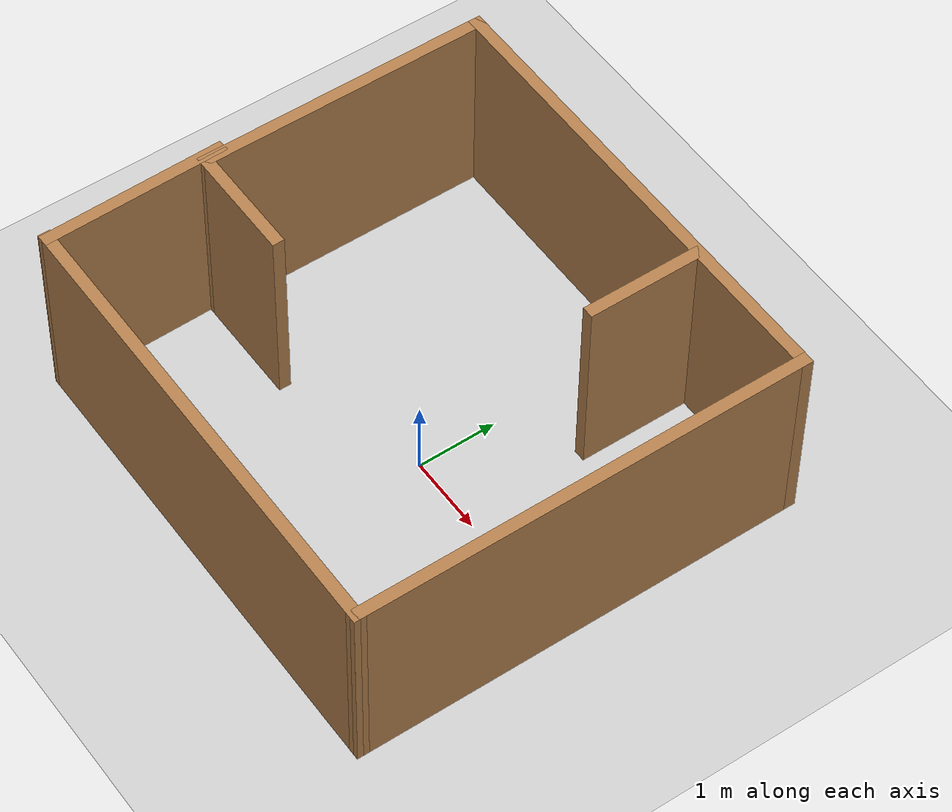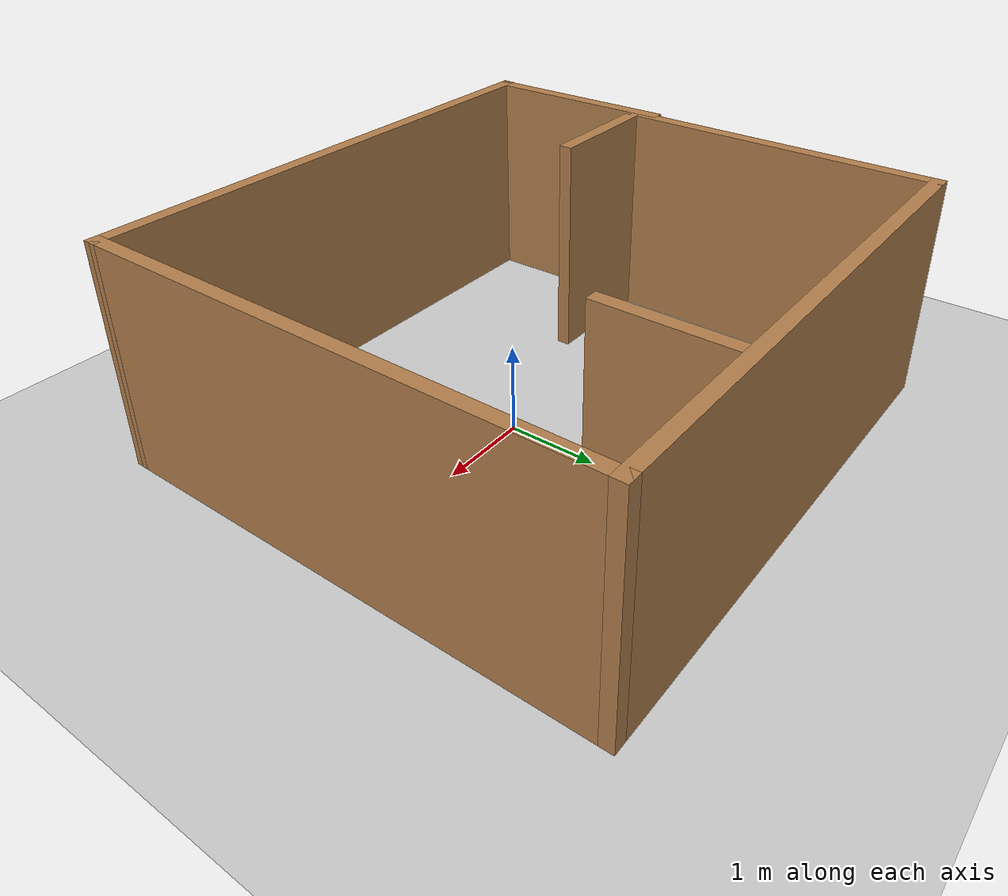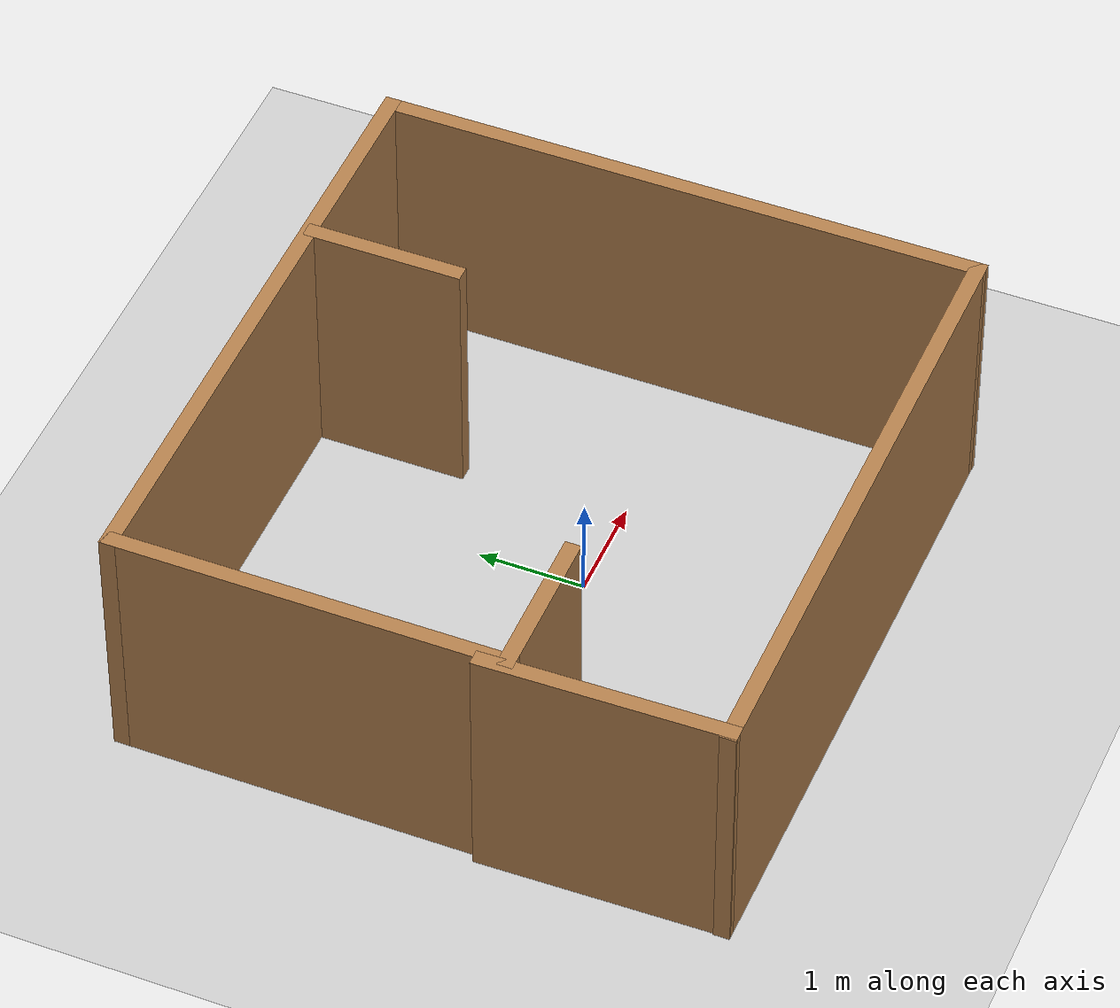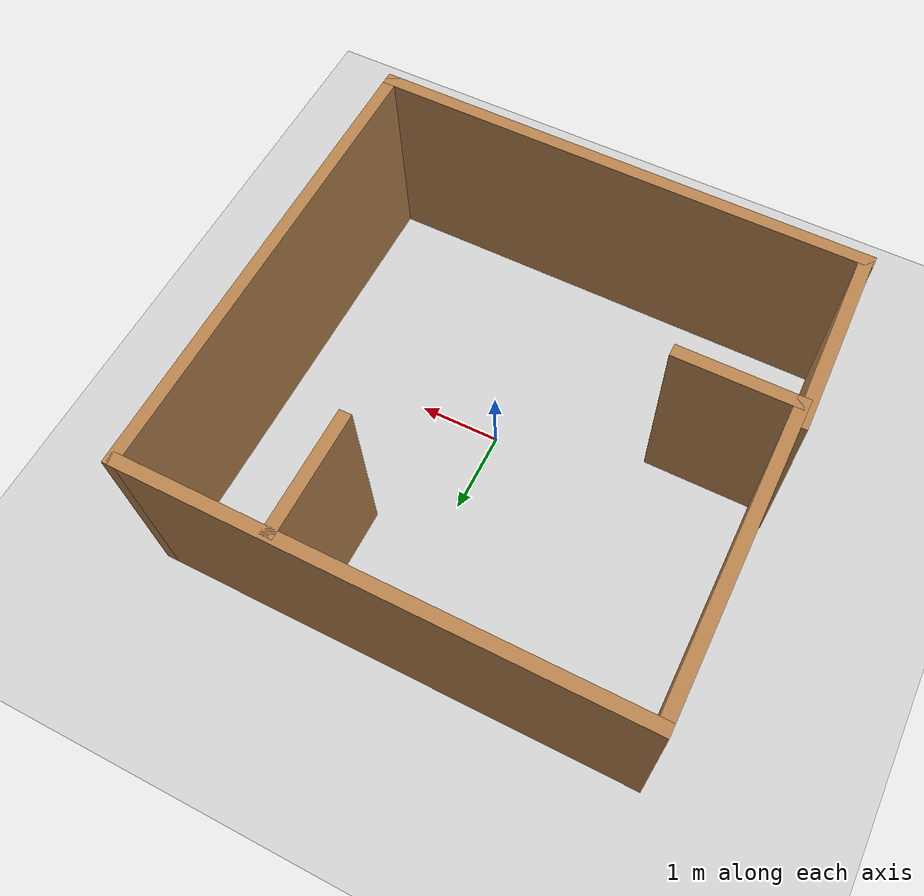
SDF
<sdf version="1.7">
 <world name="default">
  <light name="sun" type="directional">
   <pose>0 0 10 0 -0 0</pose>
   <diffuse>0.8 0.8 0.8 1</diffuse>
   <specular>0.2 0.2 0.2 1</specular>
   <attenuation>
    <range>1000</range>
    <constant>0.9</constant>
    <linear>0.01</linear>
    <quadratic>0.001</quadratic>
   </attenuation>
   <direction>-0.5 0.1 -0.9</direction>
   <spot><inner_angle>0</inner_angle><outer_angle>0</outer_angle><falloff>0</falloff></spot>
  </light>
  <model name="ground_plane">
   <static>1</static>
   <link name="link">
    <collision name="collision">
     <geometry><plane><normal>0 0 1</normal><size>100 100</size></plane></geometry>
     <surface>
      <contact><collide_bitmask>65535</collide_bitmask></contact>
      <friction><ode><mu>100</mu><mu2>50</mu2></ode></friction>
     </surface>
    </collision>
    <visual name="visual">
     <cast_shadows>0</cast_shadows>
     <geometry><plane><normal>0 0 1</normal><size>100 100</size></plane></geometry>
     <material>
      <script><uri>file://media/materials/scripts/gazebo.material</uri><name>Gazebo/Grey</name></script>
     </material>
    </visual>
   </link>
  </model>
  <gravity>0 0 -9.8</gravity>
  <magnetic_field>6e-06 2.3e-05 -4.2e-05</magnetic_field>
  <atmosphere type="adiabatic"/>
  <physics type="ode">
   <max_step_size>0.001</max_step_size>
   <real_time_factor>1</real_time_factor>
   <real_time_update_rate>1000</real_time_update_rate>
  </physics>
  <scene><ambient>0.4 0.4 0.4 1</ambient><background>0.7 0.7 0.7 1</background><shadows>1</shadows></scene>
  <spherical_coordinates>
   <surface_model>EARTH_WGS84</surface_model>
   <latitude_deg>0</latitude_deg>
   <longitude_deg>0</longitude_deg>
   <elevation>0</elevation>
   <heading_deg>0</heading_deg>
  </spherical_coordinates>
  <model name="custom_world1">
   <pose>-0.28771 0.187583 0 0 -0 0</pose>
   <link name="Wall_13">
    <collision name="Wall_13_Collision">
     <geometry><box><size>5.75 0.15 2.5</size></box></geometry>
     <pose>0 0 1.25 0 -0 0</pose>
    </collision>
    <visual name="Wall_13_Visual">
     <pose>0 0 1.25 0 -0 0</pose>
     <geometry><box><size>5.75 0.15 2.5</size></box></geometry>
     <material>
      <script><uri>file://media/materials/scripts/gazebo.material</uri><name>Gazebo/Wood</name></script>
      <ambient>1 1 1 1</ambient>
     </material>
     <meta><layer>0</layer></meta>
    </visual>
    <pose>2.96143 0.00011 0 0 -0 1.5708</pose>
   </link>
   <link name="Wall_16">
    <collision name="Wall_16_Collision">
     <geometry><box><size>6 0.15 2.5</size></box></geometry>
     <pose>0 0 1.25 0 -0 0</pose>
    </collision>
    <visual name="Wall_16_Visual">
     <pose>0 0 1.25 0 -0 0</pose>
     <geometry><box><size>6 0.15 2.5</size></box></geometry>
     <material>
      <script><uri>file://media/materials/scripts/gazebo.material</uri><name>Gazebo/Wood</name></script>
      <ambient>1 1 1 1</ambient>
     </material>
     <meta><layer>0</layer></meta>
    </visual>
    <pose>0.036434 2.80011 0 0 -0 3.14159</pose>
   </link>
   <link name="Wall_17">
    <collision name="Wall_17_Collision">
     <geometry><box><size>3.75 0.15 2.5</size></box></geometry>
     <pose>0 0 1.25 0 -0 0</pose>
    </collision>
    <visual name="Wall_17_Visual">
     <pose>0 0 1.25 0 -0 0</pose>
     <geometry><box><size>3.75 0.15 2.5</size></box></geometry>
     <material>
      <script><uri>file://media/materials/scripts/gazebo.material</uri><name>Gazebo/Wood</name></script>
      <ambient>1 1 1 1</ambient>
     </material>
     <meta><layer>0</layer></meta>
    </visual>
    <pose>-2.88857 1.00011 0 0 -0 -1.5708</pose>
   </link>
   <link name="Wall_19">
    <collision name="Wall_19_Collision">
     <geometry><box><size>1.5 0.15 2.5</size></box></geometry>
     <pose>0 0 1.25 0 -0 0</pose>
    </collision>
    <visual name="Wall_19_Visual">
     <pose>0 0 1.25 0 -0 0</pose>
     <geometry><box><size>1.5 0.15 2.5</size></box></geometry>
     <material>
      <script><uri>file://media/materials/scripts/gazebo.material</uri><name>Gazebo/Wood</name></script>
      <ambient>1 1 1 1</ambient>
     </material>
     <meta><layer>0</layer></meta>
    </visual>
    <pose>-2.21357 -0.79989 0 0 -0 3.14159</pose>
   </link>
   <link name="Wall_22">
    <collision name="Wall_22_Collision">
     <geometry><box><size>1.5 0.15 2.5</size></box></geometry>
     <pose>0 0 1.25 0 -0 0</pose>
    </collision>
    <visual name="Wall_22_Visual">
     <pose>0 0 1.25 0 -0 0</pose>
     <geometry><box><size>1.5 0.15 2.5</size></box></geometry>
     <material>
      <script><uri>file://media/materials/scripts/gazebo.material</uri><name>Gazebo/Wood</name></script>
      <ambient>1 1 1 1</ambient>
     </material>
     <meta><layer>0</layer></meta>
    </visual>
    <pose>1.17706 2.0817 0 0 -0 -1.5708</pose>
   </link>
   <link name="Wall_5">
    <collision name="Wall_5_Collision">
     <geometry><box><size>2.33329 0.15 2.5</size></box></geometry>
     <pose>0 0 1.25 0 -0 0</pose>
    </collision>
    <visual name="Wall_5_Visual">
     <pose>0 0 1.25 0 -0 0</pose>
     <geometry><box><size>2.33329 0.15 2.5</size></box></geometry>
     <material>
      <script><uri>file://media/materials/scripts/gazebo.material</uri><name>Gazebo/Wood</name></script>
      <ambient>1 1 1 1</ambient>
     </material>
     <meta><layer>0</layer></meta>
    </visual>
    <pose>-2.93743 -1.69091 0 0 -0 -1.55002</pose>
   </link>
   <link name="Wall_6">
    <collision name="Wall_6_Collision">
     <geometry><box><size>6.04133 0.15 2.5</size></box></geometry>
     <pose>0 0 1.25 0 -0 0</pose>
    </collision>
    <visual name="Wall_6_Visual">
     <pose>0 0 1.25 0 -0 0</pose>
     <geometry><box><size>6.04133 0.15 2.5</size></box></geometry>
     <material>
      <script><uri>file://media/materials/scripts/gazebo.material</uri><name>Gazebo/Wood</name></script>
      <ambient>1 1 1 1</ambient>
     </material>
     <meta><layer>0</layer></meta>
    </visual>
    <pose>0.015781 -2.79119 0 0 -0 -0.002952</pose>
   </link>
   <static>1</static>
  </model>
 </world>
</sdf>
